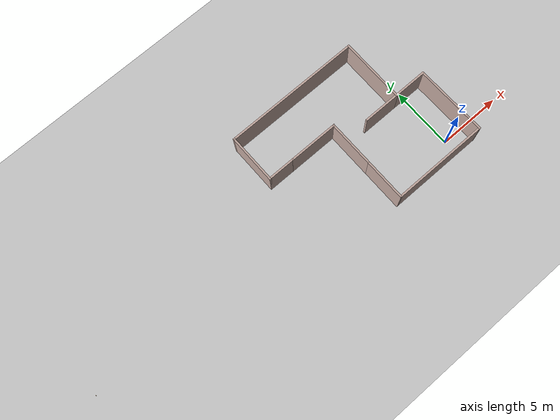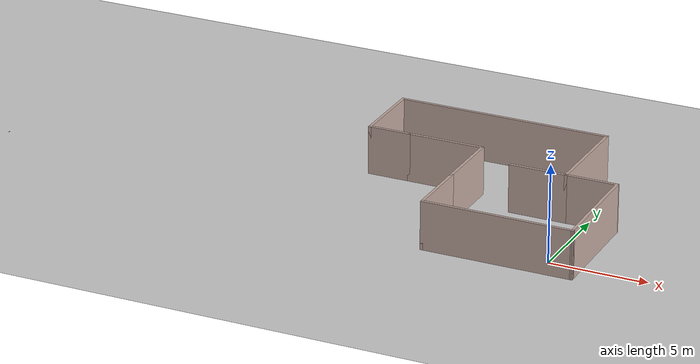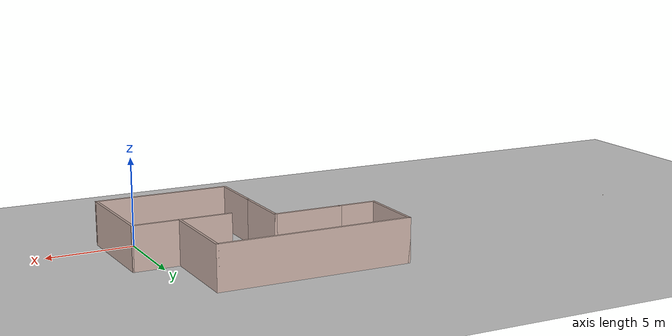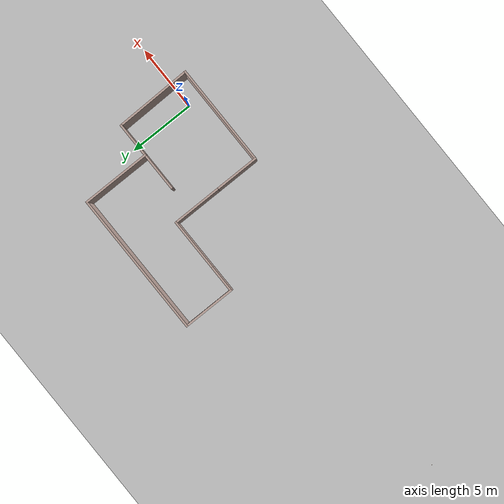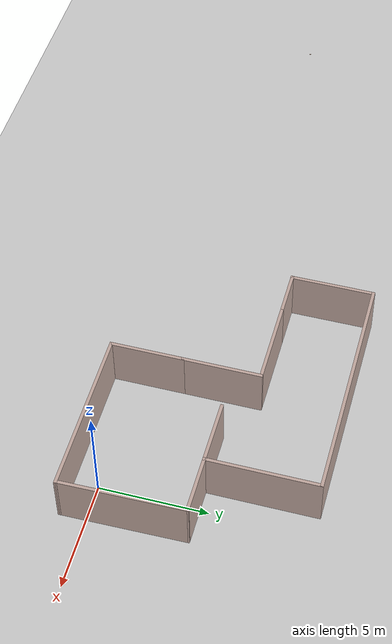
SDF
<sdf version="1.6">
 <world name="default">
  <plugin name="hello" filename="libhello.so"/>
  <light name="sun" type="directional">
   <pose>0 0 10 0 -0 0</pose>
   <diffuse>0.8 0.8 0.8 1</diffuse>
   <specular>0.2 0.2 0.2 1</specular>
   <attenuation>
    <range>1000</range>
    <constant>0.9</constant>
    <linear>0.01</linear>
    <quadratic>0.001</quadratic>
   </attenuation>
   <direction>-0.5 0.1 -0.9</direction>
  </light>
  <model name="ground_plane">
   <static>1</static>
   <link name="link">
    <collision name="collision">
     <geometry><plane><normal>0 0 1</normal><size>100 100</size></plane></geometry>
     <surface>
      <contact><collide_bitmask>65535</collide_bitmask></contact>
      <friction><ode><mu>100</mu><mu2>50</mu2></ode></friction>
     </surface>
    </collision>
    <visual name="visual">
     <cast_shadows>0</cast_shadows>
     <geometry><plane><normal>0 0 1</normal><size>100 100</size></plane></geometry>
     <material>
      <script><uri>file://media/materials/scripts/gazebo.material</uri><name>Gazebo/Grey</name></script>
     </material>
    </visual>
   </link>
  </model>
  <gravity>0 0 -9.8</gravity>
  <magnetic_field>6e-06 2.3e-05 -4.2e-05</magnetic_field>
  <atmosphere type="adiabatic"/>
  <physics name="default_physics" default="0" type="ode">
   <max_step_size>0.001</max_step_size>
   <real_time_factor>1</real_time_factor>
   <real_time_update_rate>1000</real_time_update_rate>
  </physics>
  <scene><ambient>0.4 0.4 0.4 1</ambient><background>0.7 0.7 0.7 1</background><shadows>1</shadows></scene>
  <audio><device>default</device></audio>
  <spherical_coordinates>
   <surface_model>EARTH_WGS84</surface_model>
   <latitude_deg>0</latitude_deg>
   <longitude_deg>0</longitude_deg>
   <elevation>0</elevation>
   <heading_deg>0</heading_deg>
  </spherical_coordinates>
  <model name="wooden_peg">
   <link name="link">
    <pose>0 0 0.04 0 -0 0</pose>
    <inertial>
     <mass>0.0175</mass>
     <inertia>
      <ixx>9.74923e-06</ixx>
      <ixy>0</ixy>
      <ixz>0</ixz>
      <iyy>9.74923e-06</iyy>
      <iyz>0</iyz>
      <izz>8.31797e-07</izz>
     </inertia>
    </inertial>
    <collision name="collision">
     <geometry><cylinder><radius>0.00975</radius><length>0.08</length></cylinder></geometry>
     <surface>
      <contact>
       <poissons_ratio>0.347</poissons_ratio>
       <elastic_modulus>8.8e+09</elastic_modulus>
       <ode><kp>100000</kp><kd>100</kd><max_vel>100</max_vel><min_depth>0.001</min_depth></ode>
      </contact>
      <friction>
       <torsional>
        <coefficient>1</coefficient>
        <use_patch_radius>0</use_patch_radius>
        <surface_radius>0.01</surface_radius>
       </torsional>
      </friction>
     </surface>
    </collision>
    <visual name="visual">
     <geometry><cylinder><radius>0.00975</radius><length>0.08</length></cylinder></geometry>
     <material>
      <script><uri>file://media/materials/scripts/gazebo.material</uri><name>Gazebo/Wood</name></script>
     </material>
    </visual>
   </link>
   <pose>-30.374 2.49766 0.008749 1.5708 0.722275 3.10113</pose>
  </model>
  <model name="build_0">
   <pose>-5.12874 4.21732 0 0 -0 0</pose>
   <link name="Wall_12">
    <collision name="Wall_12_Collision">
     <geometry><box><size>5.25 0.15 2.5</size></box></geometry>
     <pose>0 0 1.25 0 -0 0</pose>
    </collision>
    <visual name="Wall_12_Visual">
     <pose>0 0 1.25 0 -0 0</pose>
     <geometry><box><size>5.25 0.15 2.5</size></box></geometry>
     <material>
      <script><uri>file://media/materials/scripts/gazebo.material</uri><name>Gazebo/Grey</name></script>
      <ambient>0.760784 0.662745 0.627451 1</ambient>
     </material>
    </visual>
    <pose>4.07435 2.85065 0 0 0 -1.5708</pose>
   </link>
   <link name="Wall_13">
    <collision name="Wall_13_Collision">
     <geometry><box><size>2.75 0.15 2.5</size></box></geometry>
     <pose>0 0 1.25 0 -0 0</pose>
    </collision>
    <visual name="Wall_13_Visual">
     <pose>0 0 1.25 0 -0 0</pose>
     <geometry><box><size>2.75 0.15 2.5</size></box></geometry>
     <material>
      <script><uri>file://media/materials/scripts/gazebo.material</uri><name>Gazebo/Grey</name></script>
      <ambient>0.760784 0.662745 0.627451 1</ambient>
     </material>
    </visual>
    <pose>5.37435 0.300652 0 0 -0 0</pose>
   </link>
   <link name="Wall_15">
    <collision name="Wall_15_Collision">
     <geometry><box><size>4 0.15 2.5</size></box></geometry>
     <pose>0 0 1.25 0 -0 0</pose>
    </collision>
    <visual name="Wall_15_Visual">
     <pose>0 0 1.25 0 -0 0</pose>
     <geometry><box><size>4 0.15 2.5</size></box></geometry>
     <material>
      <script><uri>file://media/materials/scripts/gazebo.material</uri><name>Gazebo/Grey</name></script>
      <ambient>0.760784 0.662745 0.627451 1</ambient>
     </material>
    </visual>
    <pose>-2.75065 1.55065 0 0 -0 0</pose>
   </link>
   <link name="Wall_16">
    <collision name="Wall_16_Collision">
     <geometry><box><size>3.75 0.15 2.5</size></box></geometry>
     <pose>0 0 1.25 0 -0 0</pose>
    </collision>
    <visual name="Wall_16_Visual">
     <pose>0 0 1.25 0 -0 0</pose>
     <geometry><box><size>3.75 0.15 2.5</size></box></geometry>
     <material>
      <script><uri>file://media/materials/scripts/gazebo.material</uri><name>Gazebo/Grey</name></script>
      <ambient>0.760784 0.662745 0.627451 1</ambient>
     </material>
    </visual>
    <pose>-0.825652 -0.249348 0 0 0 -1.5708</pose>
   </link>
   <link name="Wall_18">
    <collision name="Wall_18_Collision">
     <geometry><box><size>3.5 0.15 2.5</size></box></geometry>
     <pose>0 0 1.25 0 -0 0</pose>
    </collision>
    <visual name="Wall_18_Visual">
     <pose>0 0 1.25 0 -0 0</pose>
     <geometry><box><size>3.5 0.15 2.5</size></box></geometry>
     <material>
      <script><uri>file://media/materials/scripts/gazebo.material</uri><name>Gazebo/Grey</name></script>
      <ambient>0.760784 0.662745 0.627451 1</ambient>
     </material>
    </visual>
    <pose>-0.825652 -3.72435 0 0 0 -1.5708</pose>
   </link>
   <link name="Wall_2">
    <collision name="Wall_2_Collision">
     <geometry><box><size>11 0.15 2.5</size></box></geometry>
     <pose>0 0 1.25 0 -0 0</pose>
    </collision>
    <visual name="Wall_2_Visual">
     <pose>0 0 1.25 0 -0 0</pose>
     <geometry><box><size>11 0.15 2.5</size></box></geometry>
     <material>
      <script><uri>file://media/materials/scripts/gazebo.material</uri><name>Gazebo/Grey</name></script>
      <ambient>0.760784 0.662745 0.627451 1</ambient>
     </material>
    </visual>
    <pose>-1.35065 5.40065 0 0 -0 0</pose>
   </link>
   <link name="Wall_21">
    <collision name="Wall_21_Collision">
     <geometry><box><size>7.75 0.15 2.5</size></box></geometry>
     <pose>0 0 1.25 0 -0 0</pose>
    </collision>
    <visual name="Wall_21_Visual">
     <pose>0 0 1.25 0 -0 0</pose>
     <geometry><box><size>7.75 0.15 2.5</size></box></geometry>
     <material>
      <script><uri>file://media/materials/scripts/gazebo.material</uri><name>Gazebo/Grey</name></script>
      <ambient>0.760784 0.662745 0.627451 1</ambient>
     </material>
    </visual>
    <pose>2.97435 -5.39935 0 0 -0 0</pose>
   </link>
   <link name="Wall_24">
    <collision name="Wall_24_Collision">
     <geometry><box><size>5.85088 0.15 2.5</size></box></geometry>
     <pose>0 0 1.25 0 -0 0</pose>
    </collision>
    <visual name="Wall_24_Visual">
     <pose>0 0 1.25 0 -0 0</pose>
     <geometry><box><size>5.85088 0.15 2.5</size></box></geometry>
     <material>
      <script><uri>file://media/materials/scripts/gazebo.material</uri><name>Gazebo/Grey</name></script>
      <ambient>0.760784 0.662745 0.627451 1</ambient>
     </material>
    </visual>
    <pose>6.72435 -2.54935 0 0 -0 1.58834</pose>
   </link>
   <link name="Wall_27">
    <collision name="Wall_27_Collision">
     <geometry><box><size>3 0.15 2.5</size></box></geometry>
     <pose>0 0 1.25 0 -0 0</pose>
    </collision>
    <visual name="Wall_27_Visual">
     <pose>0 0 1.25 0 -0 0</pose>
     <geometry><box><size>3 0.15 2.5</size></box></geometry>
     <material>
      <script><uri>file://media/materials/scripts/gazebo.material</uri><name>Gazebo/Grey</name></script>
      <ambient>0.760784 0.662745 0.627451 1</ambient>
     </material>
    </visual>
    <pose>2.64935 0.300652 0 0 -0 3.14159</pose>
   </link>
   <link name="Wall_4">
    <collision name="Wall_4_Collision">
     <geometry><box><size>4 0.15 2.5</size></box></geometry>
     <pose>0 0 1.25 0 -0 0</pose>
    </collision>
    <visual name="Wall_4_Visual">
     <pose>0 0 1.25 0 -0 0</pose>
     <geometry><box><size>4 0.15 2.5</size></box></geometry>
     <material>
      <script><uri>file://media/materials/scripts/gazebo.material</uri><name>Gazebo/Grey</name></script>
      <ambient>0.760784 0.662745 0.627451 1</ambient>
     </material>
    </visual>
    <pose>-6.77565 3.47565 0 0 0 -1.5708</pose>
   </link>
   <link name="Wall_5">
    <collision name="Wall_5_Collision">
     <geometry><box><size>2.25 0.15 2.5</size></box></geometry>
     <pose>0 0 1.25 0 -0 0</pose>
    </collision>
    <visual name="Wall_5_Visual">
     <pose>0 0 1.25 0 -0 0</pose>
     <geometry><box><size>2.25 0.15 2.5</size></box></geometry>
     <material>
      <script><uri>file://media/materials/scripts/gazebo.material</uri><name>Gazebo/Grey</name></script>
      <ambient>0.760784 0.662745 0.627451 1</ambient>
     </material>
    </visual>
    <pose>-5.72565 1.55065 0 0 -0 0</pose>
   </link>
   <static>1</static>
  </model>
 </world>
</sdf>
